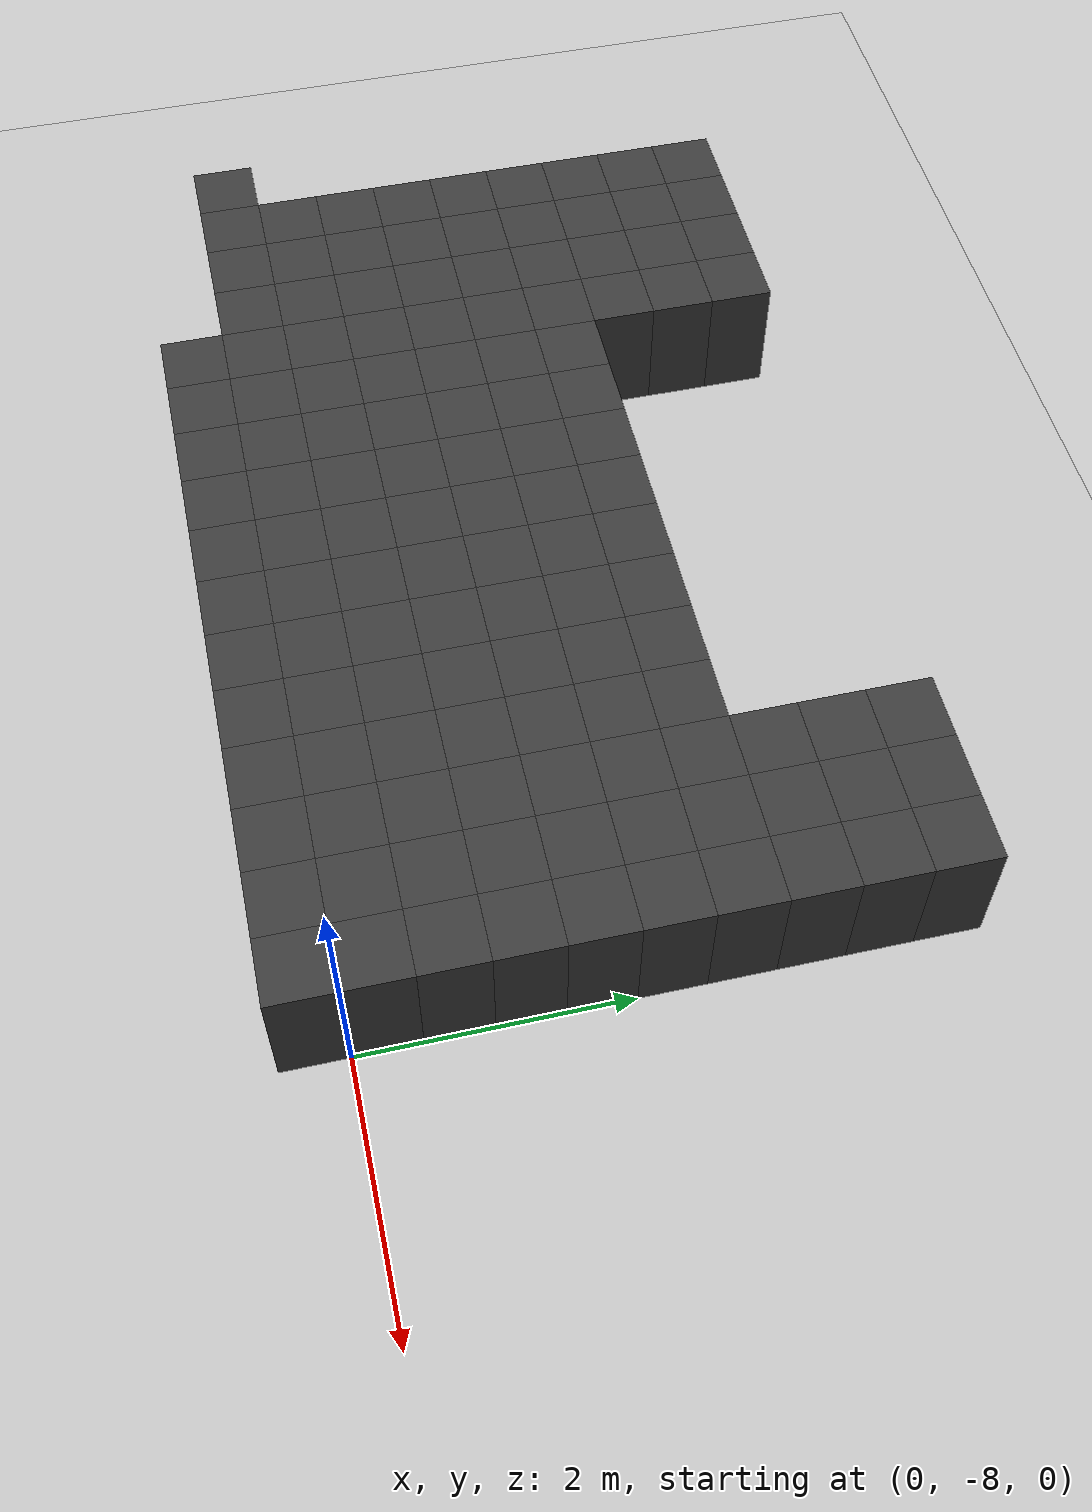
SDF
<sdf version="1.7">
 <world name="map_13820">
  <model name="ground_plane">
   <static>true</static>
   <link name="link">
    <collision name="collision">
     <geometry><plane><normal>0 0 1</normal><size>200 200</size></plane></geometry>
    </collision>
    <visual name="visual">
     <geometry><plane><normal>0 0 1</normal><size>200 200</size></plane></geometry>
     <material><ambient>0.8 0.8 0.8 1</ambient><diffuse>0.8 0.8 0.8 1</diffuse></material>
    </visual>
   </link>
  </model>
  <model name="maze_environment">
   <static>true</static>
   <link name="wall_1115">
    <pose>-7.250 -3.750 0.500 0 0 0</pose>
    <collision name="col"><geometry><box><size>0.5 0.5 1.0</size></box></geometry></collision>
    <visual name="vis">
     <geometry><box><size>0.5 0.5 1.0</size></box></geometry>
     <material><ambient>0.15 0.15 0.15 1</ambient><diffuse>0.25 0.25 0.25 1</diffuse></material>
    </visual>
   </link>
   <link name="wall_1116">
    <pose>-6.750 -3.750 0.500 0 0 0</pose>
    <collision name="col"><geometry><box><size>0.5 0.5 1.0</size></box></geometry></collision>
    <visual name="vis">
     <geometry><box><size>0.5 0.5 1.0</size></box></geometry>
     <material><ambient>0.15 0.15 0.15 1</ambient><diffuse>0.25 0.25 0.25 1</diffuse></material>
    </visual>
   </link>
   <link name="wall_1117">
    <pose>-6.250 -3.750 0.500 0 0 0</pose>
    <collision name="col"><geometry><box><size>0.5 0.5 1.0</size></box></geometry></collision>
    <visual name="vis">
     <geometry><box><size>0.5 0.5 1.0</size></box></geometry>
     <material><ambient>0.15 0.15 0.15 1</ambient><diffuse>0.25 0.25 0.25 1</diffuse></material>
    </visual>
   </link>
   <link name="wall_1118">
    <pose>-5.750 -3.750 0.500 0 0 0</pose>
    <collision name="col"><geometry><box><size>0.5 0.5 1.0</size></box></geometry></collision>
    <visual name="vis">
     <geometry><box><size>0.5 0.5 1.0</size></box></geometry>
     <material><ambient>0.15 0.15 0.15 1</ambient><diffuse>0.25 0.25 0.25 1</diffuse></material>
    </visual>
   </link>
   <link name="wall_1119">
    <pose>-1.250 -3.750 0.500 0 0 0</pose>
    <collision name="col"><geometry><box><size>0.5 0.5 1.0</size></box></geometry></collision>
    <visual name="vis">
     <geometry><box><size>0.5 0.5 1.0</size></box></geometry>
     <material><ambient>0.15 0.15 0.15 1</ambient><diffuse>0.25 0.25 0.25 1</diffuse></material>
    </visual>
   </link>
   <link name="wall_1120">
    <pose>-0.750 -3.750 0.500 0 0 0</pose>
    <collision name="col"><geometry><box><size>0.5 0.5 1.0</size></box></geometry></collision>
    <visual name="vis">
     <geometry><box><size>0.5 0.5 1.0</size></box></geometry>
     <material><ambient>0.15 0.15 0.15 1</ambient><diffuse>0.25 0.25 0.25 1</diffuse></material>
    </visual>
   </link>
   <link name="wall_1121">
    <pose>-0.250 -3.750 0.500 0 0 0</pose>
    <collision name="col"><geometry><box><size>0.5 0.5 1.0</size></box></geometry></collision>
    <visual name="vis">
     <geometry><box><size>0.5 0.5 1.0</size></box></geometry>
     <material><ambient>0.15 0.15 0.15 1</ambient><diffuse>0.25 0.25 0.25 1</diffuse></material>
    </visual>
   </link>
   <link name="wall_1142">
    <pose>-7.250 -4.250 0.500 0 0 0</pose>
    <collision name="col"><geometry><box><size>0.5 0.5 1.0</size></box></geometry></collision>
    <visual name="vis">
     <geometry><box><size>0.5 0.5 1.0</size></box></geometry>
     <material><ambient>0.15 0.15 0.15 1</ambient><diffuse>0.25 0.25 0.25 1</diffuse></material>
    </visual>
   </link>
   <link name="wall_1143">
    <pose>-6.750 -4.250 0.500 0 0 0</pose>
    <collision name="col"><geometry><box><size>0.5 0.5 1.0</size></box></geometry></collision>
    <visual name="vis">
     <geometry><box><size>0.5 0.5 1.0</size></box></geometry>
     <material><ambient>0.15 0.15 0.15 1</ambient><diffuse>0.25 0.25 0.25 1</diffuse></material>
    </visual>
   </link>
   <link name="wall_1144">
    <pose>-6.250 -4.250 0.500 0 0 0</pose>
    <collision name="col"><geometry><box><size>0.5 0.5 1.0</size></box></geometry></collision>
    <visual name="vis">
     <geometry><box><size>0.5 0.5 1.0</size></box></geometry>
     <material><ambient>0.15 0.15 0.15 1</ambient><diffuse>0.25 0.25 0.25 1</diffuse></material>
    </visual>
   </link>
   <link name="wall_1145">
    <pose>-5.750 -4.250 0.500 0 0 0</pose>
    <collision name="col"><geometry><box><size>0.5 0.5 1.0</size></box></geometry></collision>
    <visual name="vis">
     <geometry><box><size>0.5 0.5 1.0</size></box></geometry>
     <material><ambient>0.15 0.15 0.15 1</ambient><diffuse>0.25 0.25 0.25 1</diffuse></material>
    </visual>
   </link>
   <link name="wall_1146">
    <pose>-1.250 -4.250 0.500 0 0 0</pose>
    <collision name="col"><geometry><box><size>0.5 0.5 1.0</size></box></geometry></collision>
    <visual name="vis">
     <geometry><box><size>0.5 0.5 1.0</size></box></geometry>
     <material><ambient>0.15 0.15 0.15 1</ambient><diffuse>0.25 0.25 0.25 1</diffuse></material>
    </visual>
   </link>
   <link name="wall_1147">
    <pose>-0.750 -4.250 0.500 0 0 0</pose>
    <collision name="col"><geometry><box><size>0.5 0.5 1.0</size></box></geometry></collision>
    <visual name="vis">
     <geometry><box><size>0.5 0.5 1.0</size></box></geometry>
     <material><ambient>0.15 0.15 0.15 1</ambient><diffuse>0.25 0.25 0.25 1</diffuse></material>
    </visual>
   </link>
   <link name="wall_1148">
    <pose>-0.250 -4.250 0.500 0 0 0</pose>
    <collision name="col"><geometry><box><size>0.5 0.5 1.0</size></box></geometry></collision>
    <visual name="vis">
     <geometry><box><size>0.5 0.5 1.0</size></box></geometry>
     <material><ambient>0.15 0.15 0.15 1</ambient><diffuse>0.25 0.25 0.25 1</diffuse></material>
    </visual>
   </link>
   <link name="wall_1169">
    <pose>-7.250 -4.750 0.500 0 0 0</pose>
    <collision name="col"><geometry><box><size>0.5 0.5 1.0</size></box></geometry></collision>
    <visual name="vis">
     <geometry><box><size>0.5 0.5 1.0</size></box></geometry>
     <material><ambient>0.15 0.15 0.15 1</ambient><diffuse>0.25 0.25 0.25 1</diffuse></material>
    </visual>
   </link>
   <link name="wall_1170">
    <pose>-6.750 -4.750 0.500 0 0 0</pose>
    <collision name="col"><geometry><box><size>0.5 0.5 1.0</size></box></geometry></collision>
    <visual name="vis">
     <geometry><box><size>0.5 0.5 1.0</size></box></geometry>
     <material><ambient>0.15 0.15 0.15 1</ambient><diffuse>0.25 0.25 0.25 1</diffuse></material>
    </visual>
   </link>
   <link name="wall_1171">
    <pose>-6.250 -4.750 0.500 0 0 0</pose>
    <collision name="col"><geometry><box><size>0.5 0.5 1.0</size></box></geometry></collision>
    <visual name="vis">
     <geometry><box><size>0.5 0.5 1.0</size></box></geometry>
     <material><ambient>0.15 0.15 0.15 1</ambient><diffuse>0.25 0.25 0.25 1</diffuse></material>
    </visual>
   </link>
   <link name="wall_1172">
    <pose>-5.750 -4.750 0.500 0 0 0</pose>
    <collision name="col"><geometry><box><size>0.5 0.5 1.0</size></box></geometry></collision>
    <visual name="vis">
     <geometry><box><size>0.5 0.5 1.0</size></box></geometry>
     <material><ambient>0.15 0.15 0.15 1</ambient><diffuse>0.25 0.25 0.25 1</diffuse></material>
    </visual>
   </link>
   <link name="wall_1173">
    <pose>-1.250 -4.750 0.500 0 0 0</pose>
    <collision name="col"><geometry><box><size>0.5 0.5 1.0</size></box></geometry></collision>
    <visual name="vis">
     <geometry><box><size>0.5 0.5 1.0</size></box></geometry>
     <material><ambient>0.15 0.15 0.15 1</ambient><diffuse>0.25 0.25 0.25 1</diffuse></material>
    </visual>
   </link>
   <link name="wall_1174">
    <pose>-0.750 -4.750 0.500 0 0 0</pose>
    <collision name="col"><geometry><box><size>0.5 0.5 1.0</size></box></geometry></collision>
    <visual name="vis">
     <geometry><box><size>0.5 0.5 1.0</size></box></geometry>
     <material><ambient>0.15 0.15 0.15 1</ambient><diffuse>0.25 0.25 0.25 1</diffuse></material>
    </visual>
   </link>
   <link name="wall_1175">
    <pose>-0.250 -4.750 0.500 0 0 0</pose>
    <collision name="col"><geometry><box><size>0.5 0.5 1.0</size></box></geometry></collision>
    <visual name="vis">
     <geometry><box><size>0.5 0.5 1.0</size></box></geometry>
     <material><ambient>0.15 0.15 0.15 1</ambient><diffuse>0.25 0.25 0.25 1</diffuse></material>
    </visual>
   </link>
   <link name="wall_1196">
    <pose>-7.250 -5.250 0.500 0 0 0</pose>
    <collision name="col"><geometry><box><size>0.5 0.5 1.0</size></box></geometry></collision>
    <visual name="vis">
     <geometry><box><size>0.5 0.5 1.0</size></box></geometry>
     <material><ambient>0.15 0.15 0.15 1</ambient><diffuse>0.25 0.25 0.25 1</diffuse></material>
    </visual>
   </link>
   <link name="wall_1197">
    <pose>-6.750 -5.250 0.500 0 0 0</pose>
    <collision name="col"><geometry><box><size>0.5 0.5 1.0</size></box></geometry></collision>
    <visual name="vis">
     <geometry><box><size>0.5 0.5 1.0</size></box></geometry>
     <material><ambient>0.15 0.15 0.15 1</ambient><diffuse>0.25 0.25 0.25 1</diffuse></material>
    </visual>
   </link>
   <link name="wall_1198">
    <pose>-6.250 -5.250 0.500 0 0 0</pose>
    <collision name="col"><geometry><box><size>0.5 0.5 1.0</size></box></geometry></collision>
    <visual name="vis">
     <geometry><box><size>0.5 0.5 1.0</size></box></geometry>
     <material><ambient>0.15 0.15 0.15 1</ambient><diffuse>0.25 0.25 0.25 1</diffuse></material>
    </visual>
   </link>
   <link name="wall_1199">
    <pose>-5.750 -5.250 0.500 0 0 0</pose>
    <collision name="col"><geometry><box><size>0.5 0.5 1.0</size></box></geometry></collision>
    <visual name="vis">
     <geometry><box><size>0.5 0.5 1.0</size></box></geometry>
     <material><ambient>0.15 0.15 0.15 1</ambient><diffuse>0.25 0.25 0.25 1</diffuse></material>
    </visual>
   </link>
   <link name="wall_1200">
    <pose>-5.250 -5.250 0.500 0 0 0</pose>
    <collision name="col"><geometry><box><size>0.5 0.5 1.0</size></box></geometry></collision>
    <visual name="vis">
     <geometry><box><size>0.5 0.5 1.0</size></box></geometry>
     <material><ambient>0.15 0.15 0.15 1</ambient><diffuse>0.25 0.25 0.25 1</diffuse></material>
    </visual>
   </link>
   <link name="wall_1201">
    <pose>-4.750 -5.250 0.500 0 0 0</pose>
    <collision name="col"><geometry><box><size>0.5 0.5 1.0</size></box></geometry></collision>
    <visual name="vis">
     <geometry><box><size>0.5 0.5 1.0</size></box></geometry>
     <material><ambient>0.15 0.15 0.15 1</ambient><diffuse>0.25 0.25 0.25 1</diffuse></material>
    </visual>
   </link>
   <link name="wall_1202">
    <pose>-4.250 -5.250 0.500 0 0 0</pose>
    <collision name="col"><geometry><box><size>0.5 0.5 1.0</size></box></geometry></collision>
    <visual name="vis">
     <geometry><box><size>0.5 0.5 1.0</size></box></geometry>
     <material><ambient>0.15 0.15 0.15 1</ambient><diffuse>0.25 0.25 0.25 1</diffuse></material>
    </visual>
   </link>
   <link name="wall_1203">
    <pose>-3.750 -5.250 0.500 0 0 0</pose>
    <collision name="col"><geometry><box><size>0.5 0.5 1.0</size></box></geometry></collision>
    <visual name="vis">
     <geometry><box><size>0.5 0.5 1.0</size></box></geometry>
     <material><ambient>0.15 0.15 0.15 1</ambient><diffuse>0.25 0.25 0.25 1</diffuse></material>
    </visual>
   </link>
   <link name="wall_1204">
    <pose>-3.250 -5.250 0.500 0 0 0</pose>
    <collision name="col"><geometry><box><size>0.5 0.5 1.0</size></box></geometry></collision>
    <visual name="vis">
     <geometry><box><size>0.5 0.5 1.0</size></box></geometry>
     <material><ambient>0.15 0.15 0.15 1</ambient><diffuse>0.25 0.25 0.25 1</diffuse></material>
    </visual>
   </link>
   <link name="wall_1205">
    <pose>-2.750 -5.250 0.500 0 0 0</pose>
    <collision name="col"><geometry><box><size>0.5 0.5 1.0</size></box></geometry></collision>
    <visual name="vis">
     <geometry><box><size>0.5 0.5 1.0</size></box></geometry>
     <material><ambient>0.15 0.15 0.15 1</ambient><diffuse>0.25 0.25 0.25 1</diffuse></material>
    </visual>
   </link>
   <link name="wall_1206">
    <pose>-2.250 -5.250 0.500 0 0 0</pose>
    <collision name="col"><geometry><box><size>0.5 0.5 1.0</size></box></geometry></collision>
    <visual name="vis">
     <geometry><box><size>0.5 0.5 1.0</size></box></geometry>
     <material><ambient>0.15 0.15 0.15 1</ambient><diffuse>0.25 0.25 0.25 1</diffuse></material>
    </visual>
   </link>
   <link name="wall_1207">
    <pose>-1.750 -5.250 0.500 0 0 0</pose>
    <collision name="col"><geometry><box><size>0.5 0.5 1.0</size></box></geometry></collision>
    <visual name="vis">
     <geometry><box><size>0.5 0.5 1.0</size></box></geometry>
     <material><ambient>0.15 0.15 0.15 1</ambient><diffuse>0.25 0.25 0.25 1</diffuse></material>
    </visual>
   </link>
   <link name="wall_1208">
    <pose>-1.250 -5.250 0.500 0 0 0</pose>
    <collision name="col"><geometry><box><size>0.5 0.5 1.0</size></box></geometry></collision>
    <visual name="vis">
     <geometry><box><size>0.5 0.5 1.0</size></box></geometry>
     <material><ambient>0.15 0.15 0.15 1</ambient><diffuse>0.25 0.25 0.25 1</diffuse></material>
    </visual>
   </link>
   <link name="wall_1209">
    <pose>-0.750 -5.250 0.500 0 0 0</pose>
    <collision name="col"><geometry><box><size>0.5 0.5 1.0</size></box></geometry></collision>
    <visual name="vis">
     <geometry><box><size>0.5 0.5 1.0</size></box></geometry>
     <material><ambient>0.15 0.15 0.15 1</ambient><diffuse>0.25 0.25 0.25 1</diffuse></material>
    </visual>
   </link>
   <link name="wall_1210">
    <pose>-0.250 -5.250 0.500 0 0 0</pose>
    <collision name="col"><geometry><box><size>0.5 0.5 1.0</size></box></geometry></collision>
    <visual name="vis">
     <geometry><box><size>0.5 0.5 1.0</size></box></geometry>
     <material><ambient>0.15 0.15 0.15 1</ambient><diffuse>0.25 0.25 0.25 1</diffuse></material>
    </visual>
   </link>
   <link name="wall_1231">
    <pose>-7.250 -5.750 0.500 0 0 0</pose>
    <collision name="col"><geometry><box><size>0.5 0.5 1.0</size></box></geometry></collision>
    <visual name="vis">
     <geometry><box><size>0.5 0.5 1.0</size></box></geometry>
     <material><ambient>0.15 0.15 0.15 1</ambient><diffuse>0.25 0.25 0.25 1</diffuse></material>
    </visual>
   </link>
   <link name="wall_1232">
    <pose>-6.750 -5.750 0.500 0 0 0</pose>
    <collision name="col"><geometry><box><size>0.5 0.5 1.0</size></box></geometry></collision>
    <visual name="vis">
     <geometry><box><size>0.5 0.5 1.0</size></box></geometry>
     <material><ambient>0.15 0.15 0.15 1</ambient><diffuse>0.25 0.25 0.25 1</diffuse></material>
    </visual>
   </link>
   <link name="wall_1233">
    <pose>-6.250 -5.750 0.500 0 0 0</pose>
    <collision name="col"><geometry><box><size>0.5 0.5 1.0</size></box></geometry></collision>
    <visual name="vis">
     <geometry><box><size>0.5 0.5 1.0</size></box></geometry>
     <material><ambient>0.15 0.15 0.15 1</ambient><diffuse>0.25 0.25 0.25 1</diffuse></material>
    </visual>
   </link>
   <link name="wall_1234">
    <pose>-5.750 -5.750 0.500 0 0 0</pose>
    <collision name="col"><geometry><box><size>0.5 0.5 1.0</size></box></geometry></collision>
    <visual name="vis">
     <geometry><box><size>0.5 0.5 1.0</size></box></geometry>
     <material><ambient>0.15 0.15 0.15 1</ambient><diffuse>0.25 0.25 0.25 1</diffuse></material>
    </visual>
   </link>
   <link name="wall_1235">
    <pose>-5.250 -5.750 0.500 0 0 0</pose>
    <collision name="col"><geometry><box><size>0.5 0.5 1.0</size></box></geometry></collision>
    <visual name="vis">
     <geometry><box><size>0.5 0.5 1.0</size></box></geometry>
     <material><ambient>0.15 0.15 0.15 1</ambient><diffuse>0.25 0.25 0.25 1</diffuse></material>
    </visual>
   </link>
   <link name="wall_1236">
    <pose>-4.750 -5.750 0.500 0 0 0</pose>
    <collision name="col"><geometry><box><size>0.5 0.5 1.0</size></box></geometry></collision>
    <visual name="vis">
     <geometry><box><size>0.5 0.5 1.0</size></box></geometry>
     <material><ambient>0.15 0.15 0.15 1</ambient><diffuse>0.25 0.25 0.25 1</diffuse></material>
    </visual>
   </link>
   <link name="wall_1237">
    <pose>-4.250 -5.750 0.500 0 0 0</pose>
    <collision name="col"><geometry><box><size>0.5 0.5 1.0</size></box></geometry></collision>
    <visual name="vis">
     <geometry><box><size>0.5 0.5 1.0</size></box></geometry>
     <material><ambient>0.15 0.15 0.15 1</ambient><diffuse>0.25 0.25 0.25 1</diffuse></material>
    </visual>
   </link>
   <link name="wall_1238">
    <pose>-3.750 -5.750 0.500 0 0 0</pose>
    <collision name="col"><geometry><box><size>0.5 0.5 1.0</size></box></geometry></collision>
    <visual name="vis">
     <geometry><box><size>0.5 0.5 1.0</size></box></geometry>
     <material><ambient>0.15 0.15 0.15 1</ambient><diffuse>0.25 0.25 0.25 1</diffuse></material>
    </visual>
   </link>
   <link name="wall_1239">
    <pose>-3.250 -5.750 0.500 0 0 0</pose>
    <collision name="col"><geometry><box><size>0.5 0.5 1.0</size></box></geometry></collision>
    <visual name="vis">
     <geometry><box><size>0.5 0.5 1.0</size></box></geometry>
     <material><ambient>0.15 0.15 0.15 1</ambient><diffuse>0.25 0.25 0.25 1</diffuse></material>
    </visual>
   </link>
   <link name="wall_1240">
    <pose>-2.750 -5.750 0.500 0 0 0</pose>
    <collision name="col"><geometry><box><size>0.5 0.5 1.0</size></box></geometry></collision>
    <visual name="vis">
     <geometry><box><size>0.5 0.5 1.0</size></box></geometry>
     <material><ambient>0.15 0.15 0.15 1</ambient><diffuse>0.25 0.25 0.25 1</diffuse></material>
    </visual>
   </link>
   <link name="wall_1241">
    <pose>-2.250 -5.750 0.500 0 0 0</pose>
    <collision name="col"><geometry><box><size>0.5 0.5 1.0</size></box></geometry></collision>
    <visual name="vis">
     <geometry><box><size>0.5 0.5 1.0</size></box></geometry>
     <material><ambient>0.15 0.15 0.15 1</ambient><diffuse>0.25 0.25 0.25 1</diffuse></material>
    </visual>
   </link>
   <link name="wall_1242">
    <pose>-1.750 -5.750 0.500 0 0 0</pose>
    <collision name="col"><geometry><box><size>0.5 0.5 1.0</size></box></geometry></collision>
    <visual name="vis">
     <geometry><box><size>0.5 0.5 1.0</size></box></geometry>
     <material><ambient>0.15 0.15 0.15 1</ambient><diffuse>0.25 0.25 0.25 1</diffuse></material>
    </visual>
   </link>
   <link name="wall_1243">
    <pose>-1.250 -5.750 0.500 0 0 0</pose>
    <collision name="col"><geometry><box><size>0.5 0.5 1.0</size></box></geometry></collision>
    <visual name="vis">
     <geometry><box><size>0.5 0.5 1.0</size></box></geometry>
     <material><ambient>0.15 0.15 0.15 1</ambient><diffuse>0.25 0.25 0.25 1</diffuse></material>
    </visual>
   </link>
   <link name="wall_1244">
    <pose>-0.750 -5.750 0.500 0 0 0</pose>
    <collision name="col"><geometry><box><size>0.5 0.5 1.0</size></box></geometry></collision>
    <visual name="vis">
     <geometry><box><size>0.5 0.5 1.0</size></box></geometry>
     <material><ambient>0.15 0.15 0.15 1</ambient><diffuse>0.25 0.25 0.25 1</diffuse></material>
    </visual>
   </link>
   <link name="wall_1245">
    <pose>-0.250 -5.750 0.500 0 0 0</pose>
    <collision name="col"><geometry><box><size>0.5 0.5 1.0</size></box></geometry></collision>
    <visual name="vis">
     <geometry><box><size>0.5 0.5 1.0</size></box></geometry>
     <material><ambient>0.15 0.15 0.15 1</ambient><diffuse>0.25 0.25 0.25 1</diffuse></material>
    </visual>
   </link>
   <link name="wall_1266">
    <pose>-7.250 -6.250 0.500 0 0 0</pose>
    <collision name="col"><geometry><box><size>0.5 0.5 1.0</size></box></geometry></collision>
    <visual name="vis">
     <geometry><box><size>0.5 0.5 1.0</size></box></geometry>
     <material><ambient>0.15 0.15 0.15 1</ambient><diffuse>0.25 0.25 0.25 1</diffuse></material>
    </visual>
   </link>
   <link name="wall_1267">
    <pose>-6.750 -6.250 0.500 0 0 0</pose>
    <collision name="col"><geometry><box><size>0.5 0.5 1.0</size></box></geometry></collision>
    <visual name="vis">
     <geometry><box><size>0.5 0.5 1.0</size></box></geometry>
     <material><ambient>0.15 0.15 0.15 1</ambient><diffuse>0.25 0.25 0.25 1</diffuse></material>
    </visual>
   </link>
   <link name="wall_1268">
    <pose>-6.250 -6.250 0.500 0 0 0</pose>
    <collision name="col"><geometry><box><size>0.5 0.5 1.0</size></box></geometry></collision>
    <visual name="vis">
     <geometry><box><size>0.5 0.5 1.0</size></box></geometry>
     <material><ambient>0.15 0.15 0.15 1</ambient><diffuse>0.25 0.25 0.25 1</diffuse></material>
    </visual>
   </link>
   <link name="wall_1269">
    <pose>-5.750 -6.250 0.500 0 0 0</pose>
    <collision name="col"><geometry><box><size>0.5 0.5 1.0</size></box></geometry></collision>
    <visual name="vis">
     <geometry><box><size>0.5 0.5 1.0</size></box></geometry>
     <material><ambient>0.15 0.15 0.15 1</ambient><diffuse>0.25 0.25 0.25 1</diffuse></material>
    </visual>
   </link>
   <link name="wall_1270">
    <pose>-5.250 -6.250 0.500 0 0 0</pose>
    <collision name="col"><geometry><box><size>0.5 0.5 1.0</size></box></geometry></collision>
    <visual name="vis">
     <geometry><box><size>0.5 0.5 1.0</size></box></geometry>
     <material><ambient>0.15 0.15 0.15 1</ambient><diffuse>0.25 0.25 0.25 1</diffuse></material>
    </visual>
   </link>
   <link name="wall_1271">
    <pose>-4.750 -6.250 0.500 0 0 0</pose>
    <collision name="col"><geometry><box><size>0.5 0.5 1.0</size></box></geometry></collision>
    <visual name="vis">
     <geometry><box><size>0.5 0.5 1.0</size></box></geometry>
     <material><ambient>0.15 0.15 0.15 1</ambient><diffuse>0.25 0.25 0.25 1</diffuse></material>
    </visual>
   </link>
   <link name="wall_1272">
    <pose>-4.250 -6.250 0.500 0 0 0</pose>
    <collision name="col"><geometry><box><size>0.5 0.5 1.0</size></box></geometry></collision>
    <visual name="vis">
     <geometry><box><size>0.5 0.5 1.0</size></box></geometry>
     <material><ambient>0.15 0.15 0.15 1</ambient><diffuse>0.25 0.25 0.25 1</diffuse></material>
    </visual>
   </link>
   <link name="wall_1273">
    <pose>-3.750 -6.250 0.500 0 0 0</pose>
    <collision name="col"><geometry><box><size>0.5 0.5 1.0</size></box></geometry></collision>
    <visual name="vis">
     <geometry><box><size>0.5 0.5 1.0</size></box></geometry>
     <material><ambient>0.15 0.15 0.15 1</ambient><diffuse>0.25 0.25 0.25 1</diffuse></material>
    </visual>
   </link>
   <link name="wall_1274">
    <pose>-3.250 -6.250 0.500 0 0 0</pose>
    <collision name="col"><geometry><box><size>0.5 0.5 1.0</size></box></geometry></collision>
    <visual name="vis">
     <geometry><box><size>0.5 0.5 1.0</size></box></geometry>
     <material><ambient>0.15 0.15 0.15 1</ambient><diffuse>0.25 0.25 0.25 1</diffuse></material>
    </visual>
   </link>
   <link name="wall_1275">
    <pose>-2.750 -6.250 0.500 0 0 0</pose>
    <collision name="col"><geometry><box><size>0.5 0.5 1.0</size></box></geometry></collision>
    <visual name="vis">
     <geometry><box><size>0.5 0.5 1.0</size></box></geometry>
     <material><ambient>0.15 0.15 0.15 1</ambient><diffuse>0.25 0.25 0.25 1</diffuse></material>
    </visual>
   </link>
   <link name="wall_1276">
    <pose>-2.250 -6.250 0.500 0 0 0</pose>
    <collision name="col"><geometry><box><size>0.5 0.5 1.0</size></box></geometry></collision>
    <visual name="vis">
     <geometry><box><size>0.5 0.5 1.0</size></box></geometry>
     <material><ambient>0.15 0.15 0.15 1</ambient><diffuse>0.25 0.25 0.25 1</diffuse></material>
    </visual>
   </link>
   <link name="wall_1277">
    <pose>-1.750 -6.250 0.500 0 0 0</pose>
    <collision name="col"><geometry><box><size>0.5 0.5 1.0</size></box></geometry></collision>
    <visual name="vis">
     <geometry><box><size>0.5 0.5 1.0</size></box></geometry>
     <material><ambient>0.15 0.15 0.15 1</ambient><diffuse>0.25 0.25 0.25 1</diffuse></material>
    </visual>
   </link>
   <link name="wall_1278">
    <pose>-1.250 -6.250 0.500 0 0 0</pose>
    <collision name="col"><geometry><box><size>0.5 0.5 1.0</size></box></geometry></collision>
    <visual name="vis">
     <geometry><box><size>0.5 0.5 1.0</size></box></geometry>
     <material><ambient>0.15 0.15 0.15 1</ambient><diffuse>0.25 0.25 0.25 1</diffuse></material>
    </visual>
   </link>
   <link name="wall_1279">
    <pose>-0.750 -6.250 0.500 0 0 0</pose>
    <collision name="col"><geometry><box><size>0.5 0.5 1.0</size></box></geometry></collision>
    <visual name="vis">
     <geometry><box><size>0.5 0.5 1.0</size></box></geometry>
     <material><ambient>0.15 0.15 0.15 1</ambient><diffuse>0.25 0.25 0.25 1</diffuse></material>
    </visual>
   </link>
   <link name="wall_1280">
    <pose>-0.250 -6.250 0.500 0 0 0</pose>
    <collision name="col"><geometry><box><size>0.5 0.5 1.0</size></box></geometry></collision>
    <visual name="vis">
     <geometry><box><size>0.5 0.5 1.0</size></box></geometry>
     <material><ambient>0.15 0.15 0.15 1</ambient><diffuse>0.25 0.25 0.25 1</diffuse></material>
    </visual>
   </link>
   <link name="wall_1301">
    <pose>-7.250 -6.750 0.500 0 0 0</pose>
    <collision name="col"><geometry><box><size>0.5 0.5 1.0</size></box></geometry></collision>
    <visual name="vis">
     <geometry><box><size>0.5 0.5 1.0</size></box></geometry>
     <material><ambient>0.15 0.15 0.15 1</ambient><diffuse>0.25 0.25 0.25 1</diffuse></material>
    </visual>
   </link>
   <link name="wall_1302">
    <pose>-6.750 -6.750 0.500 0 0 0</pose>
    <collision name="col"><geometry><box><size>0.5 0.5 1.0</size></box></geometry></collision>
    <visual name="vis">
     <geometry><box><size>0.5 0.5 1.0</size></box></geometry>
     <material><ambient>0.15 0.15 0.15 1</ambient><diffuse>0.25 0.25 0.25 1</diffuse></material>
    </visual>
   </link>
   <link name="wall_1303">
    <pose>-6.250 -6.750 0.500 0 0 0</pose>
    <collision name="col"><geometry><box><size>0.5 0.5 1.0</size></box></geometry></collision>
    <visual name="vis">
     <geometry><box><size>0.5 0.5 1.0</size></box></geometry>
     <material><ambient>0.15 0.15 0.15 1</ambient><diffuse>0.25 0.25 0.25 1</diffuse></material>
    </visual>
   </link>
   <link name="wall_1304">
    <pose>-5.750 -6.750 0.500 0 0 0</pose>
    <collision name="col"><geometry><box><size>0.5 0.5 1.0</size></box></geometry></collision>
    <visual name="vis">
     <geometry><box><size>0.5 0.5 1.0</size></box></geometry>
     <material><ambient>0.15 0.15 0.15 1</ambient><diffuse>0.25 0.25 0.25 1</diffuse></material>
    </visual>
   </link>
   <link name="wall_1305">
    <pose>-5.250 -6.750 0.500 0 0 0</pose>
    <collision name="col"><geometry><box><size>0.5 0.5 1.0</size></box></geometry></collision>
    <visual name="vis">
     <geometry><box><size>0.5 0.5 1.0</size></box></geometry>
     <material><ambient>0.15 0.15 0.15 1</ambient><diffuse>0.25 0.25 0.25 1</diffuse></material>
    </visual>
   </link>
   <link name="wall_1306">
    <pose>-4.750 -6.750 0.500 0 0 0</pose>
    <collision name="col"><geometry><box><size>0.5 0.5 1.0</size></box></geometry></collision>
    <visual name="vis">
     <geometry><box><size>0.5 0.5 1.0</size></box></geometry>
     <material><ambient>0.15 0.15 0.15 1</ambient><diffuse>0.25 0.25 0.25 1</diffuse></material>
    </visual>
   </link>
   <link name="wall_1307">
    <pose>-4.250 -6.750 0.500 0 0 0</pose>
    <collision name="col"><geometry><box><size>0.5 0.5 1.0</size></box></geometry></collision>
    <visual name="vis">
     <geometry><box><size>0.5 0.5 1.0</size></box></geometry>
     <material><ambient>0.15 0.15 0.15 1</ambient><diffuse>0.25 0.25 0.25 1</diffuse></material>
    </visual>
   </link>
   <link name="wall_1308">
    <pose>-3.750 -6.750 0.500 0 0 0</pose>
    <collision name="col"><geometry><box><size>0.5 0.5 1.0</size></box></geometry></collision>
    <visual name="vis">
     <geometry><box><size>0.5 0.5 1.0</size></box></geometry>
     <material><ambient>0.15 0.15 0.15 1</ambient><diffuse>0.25 0.25 0.25 1</diffuse></material>
    </visual>
   </link>
   <link name="wall_1309">
    <pose>-3.250 -6.750 0.500 0 0 0</pose>
    <collision name="col"><geometry><box><size>0.5 0.5 1.0</size></box></geometry></collision>
    <visual name="vis">
     <geometry><box><size>0.5 0.5 1.0</size></box></geometry>
     <material><ambient>0.15 0.15 0.15 1</ambient><diffuse>0.25 0.25 0.25 1</diffuse></material>
    </visual>
   </link>
   <link name="wall_1310">
    <pose>-2.750 -6.750 0.500 0 0 0</pose>
    <collision name="col"><geometry><box><size>0.5 0.5 1.0</size></box></geometry></collision>
    <visual name="vis">
     <geometry><box><size>0.5 0.5 1.0</size></box></geometry>
     <material><ambient>0.15 0.15 0.15 1</ambient><diffuse>0.25 0.25 0.25 1</diffuse></material>
    </visual>
   </link>
   <link name="wall_1311">
    <pose>-2.250 -6.750 0.500 0 0 0</pose>
    <collision name="col"><geometry><box><size>0.5 0.5 1.0</size></box></geometry></collision>
    <visual name="vis">
     <geometry><box><size>0.5 0.5 1.0</size></box></geometry>
     <material><ambient>0.15 0.15 0.15 1</ambient><diffuse>0.25 0.25 0.25 1</diffuse></material>
    </visual>
   </link>
   <link name="wall_1312">
    <pose>-1.750 -6.750 0.500 0 0 0</pose>
    <collision name="col"><geometry><box><size>0.5 0.5 1.0</size></box></geometry></collision>
    <visual name="vis">
     <geometry><box><size>0.5 0.5 1.0</size></box></geometry>
     <material><ambient>0.15 0.15 0.15 1</ambient><diffuse>0.25 0.25 0.25 1</diffuse></material>
    </visual>
   </link>
   <link name="wall_1313">
    <pose>-1.250 -6.750 0.500 0 0 0</pose>
    <collision name="col"><geometry><box><size>0.5 0.5 1.0</size></box></geometry></collision>
    <visual name="vis">
     <geometry><box><size>0.5 0.5 1.0</size></box></geometry>
     <material><ambient>0.15 0.15 0.15 1</ambient><diffuse>0.25 0.25 0.25 1</diffuse></material>
    </visual>
   </link>
   <link name="wall_1314">
    <pose>-0.750 -6.750 0.500 0 0 0</pose>
    <collision name="col"><geometry><box><size>0.5 0.5 1.0</size></box></geometry></collision>
    <visual name="vis">
     <geometry><box><size>0.5 0.5 1.0</size></box></geometry>
     <material><ambient>0.15 0.15 0.15 1</ambient><diffuse>0.25 0.25 0.25 1</diffuse></material>
    </visual>
   </link>
   <link name="wall_1315">
    <pose>-0.250 -6.750 0.500 0 0 0</pose>
    <collision name="col"><geometry><box><size>0.5 0.5 1.0</size></box></geometry></collision>
    <visual name="vis">
     <geometry><box><size>0.5 0.5 1.0</size></box></geometry>
     <material><ambient>0.15 0.15 0.15 1</ambient><diffuse>0.25 0.25 0.25 1</diffuse></material>
    </visual>
   </link>
   <link name="wall_1343">
    <pose>-7.250 -7.250 0.500 0 0 0</pose>
    <collision name="col"><geometry><box><size>0.5 0.5 1.0</size></box></geometry></collision>
    <visual name="vis">
     <geometry><box><size>0.5 0.5 1.0</size></box></geometry>
     <material><ambient>0.15 0.15 0.15 1</ambient><diffuse>0.25 0.25 0.25 1</diffuse></material>
    </visual>
   </link>
   <link name="wall_1344">
    <pose>-6.750 -7.250 0.500 0 0 0</pose>
    <collision name="col"><geometry><box><size>0.5 0.5 1.0</size></box></geometry></collision>
    <visual name="vis">
     <geometry><box><size>0.5 0.5 1.0</size></box></geometry>
     <material><ambient>0.15 0.15 0.15 1</ambient><diffuse>0.25 0.25 0.25 1</diffuse></material>
    </visual>
   </link>
   <link name="wall_1345">
    <pose>-6.250 -7.250 0.500 0 0 0</pose>
    <collision name="col"><geometry><box><size>0.5 0.5 1.0</size></box></geometry></collision>
    <visual name="vis">
     <geometry><box><size>0.5 0.5 1.0</size></box></geometry>
     <material><ambient>0.15 0.15 0.15 1</ambient><diffuse>0.25 0.25 0.25 1</diffuse></material>
    </visual>
   </link>
   <link name="wall_1346">
    <pose>-5.750 -7.250 0.500 0 0 0</pose>
    <collision name="col"><geometry><box><size>0.5 0.5 1.0</size></box></geometry></collision>
    <visual name="vis">
     <geometry><box><size>0.5 0.5 1.0</size></box></geometry>
     <material><ambient>0.15 0.15 0.15 1</ambient><diffuse>0.25 0.25 0.25 1</diffuse></material>
    </visual>
   </link>
   <link name="wall_1347">
    <pose>-5.250 -7.250 0.500 0 0 0</pose>
    <collision name="col"><geometry><box><size>0.5 0.5 1.0</size></box></geometry></collision>
    <visual name="vis">
     <geometry><box><size>0.5 0.5 1.0</size></box></geometry>
     <material><ambient>0.15 0.15 0.15 1</ambient><diffuse>0.25 0.25 0.25 1</diffuse></material>
    </visual>
   </link>
   <link name="wall_1348">
    <pose>-4.750 -7.250 0.500 0 0 0</pose>
    <collision name="col"><geometry><box><size>0.5 0.5 1.0</size></box></geometry></collision>
    <visual name="vis">
     <geometry><box><size>0.5 0.5 1.0</size></box></geometry>
     <material><ambient>0.15 0.15 0.15 1</ambient><diffuse>0.25 0.25 0.25 1</diffuse></material>
    </visual>
   </link>
   <link name="wall_1349">
    <pose>-4.250 -7.250 0.500 0 0 0</pose>
    <collision name="col"><geometry><box><size>0.5 0.5 1.0</size></box></geometry></collision>
    <visual name="vis">
     <geometry><box><size>0.5 0.5 1.0</size></box></geometry>
     <material><ambient>0.15 0.15 0.15 1</ambient><diffuse>0.25 0.25 0.25 1</diffuse></material>
    </visual>
   </link>
   <link name="wall_1350">
    <pose>-3.750 -7.250 0.500 0 0 0</pose>
    <collision name="col"><geometry><box><size>0.5 0.5 1.0</size></box></geometry></collision>
    <visual name="vis">
     <geometry><box><size>0.5 0.5 1.0</size></box></geometry>
     <material><ambient>0.15 0.15 0.15 1</ambient><diffuse>0.25 0.25 0.25 1</diffuse></material>
    </visual>
   </link>
   <link name="wall_1351">
    <pose>-3.250 -7.250 0.500 0 0 0</pose>
    <collision name="col"><geometry><box><size>0.5 0.5 1.0</size></box></geometry></collision>
    <visual name="vis">
     <geometry><box><size>0.5 0.5 1.0</size></box></geometry>
     <material><ambient>0.15 0.15 0.15 1</ambient><diffuse>0.25 0.25 0.25 1</diffuse></material>
    </visual>
   </link>
   <link name="wall_1352">
    <pose>-2.750 -7.250 0.500 0 0 0</pose>
    <collision name="col"><geometry><box><size>0.5 0.5 1.0</size></box></geometry></collision>
    <visual name="vis">
     <geometry><box><size>0.5 0.5 1.0</size></box></geometry>
     <material><ambient>0.15 0.15 0.15 1</ambient><diffuse>0.25 0.25 0.25 1</diffuse></material>
    </visual>
   </link>
   <link name="wall_1353">
    <pose>-2.250 -7.250 0.500 0 0 0</pose>
    <collision name="col"><geometry><box><size>0.5 0.5 1.0</size></box></geometry></collision>
    <visual name="vis">
     <geometry><box><size>0.5 0.5 1.0</size></box></geometry>
     <material><ambient>0.15 0.15 0.15 1</ambient><diffuse>0.25 0.25 0.25 1</diffuse></material>
    </visual>
   </link>
   <link name="wall_1354">
    <pose>-1.750 -7.250 0.500 0 0 0</pose>
    <collision name="col"><geometry><box><size>0.5 0.5 1.0</size></box></geometry></collision>
    <visual name="vis">
     <geometry><box><size>0.5 0.5 1.0</size></box></geometry>
     <material><ambient>0.15 0.15 0.15 1</ambient><diffuse>0.25 0.25 0.25 1</diffuse></material>
    </visual>
   </link>
   <link name="wall_1355">
    <pose>-1.250 -7.250 0.500 0 0 0</pose>
    <collision name="col"><geometry><box><size>0.5 0.5 1.0</size></box></geometry></collision>
    <visual name="vis">
     <geometry><box><size>0.5 0.5 1.0</size></box></geometry>
     <material><ambient>0.15 0.15 0.15 1</ambient><diffuse>0.25 0.25 0.25 1</diffuse></material>
    </visual>
   </link>
   <link name="wall_1356">
    <pose>-0.750 -7.250 0.500 0 0 0</pose>
    <collision name="col"><geometry><box><size>0.5 0.5 1.0</size></box></geometry></collision>
    <visual name="vis">
     <geometry><box><size>0.5 0.5 1.0</size></box></geometry>
     <material><ambient>0.15 0.15 0.15 1</ambient><diffuse>0.25 0.25 0.25 1</diffuse></material>
    </visual>
   </link>
   <link name="wall_1357">
    <pose>-0.250 -7.250 0.500 0 0 0</pose>
    <collision name="col"><geometry><box><size>0.5 0.5 1.0</size></box></geometry></collision>
    <visual name="vis">
     <geometry><box><size>0.5 0.5 1.0</size></box></geometry>
     <material><ambient>0.15 0.15 0.15 1</ambient><diffuse>0.25 0.25 0.25 1</diffuse></material>
    </visual>
   </link>
   <link name="wall_1391">
    <pose>-7.750 -7.750 0.500 0 0 0</pose>
    <collision name="col"><geometry><box><size>0.5 0.5 1.0</size></box></geometry></collision>
    <visual name="vis">
     <geometry><box><size>0.5 0.5 1.0</size></box></geometry>
     <material><ambient>0.15 0.15 0.15 1</ambient><diffuse>0.25 0.25 0.25 1</diffuse></material>
    </visual>
   </link>
   <link name="wall_1392">
    <pose>-7.250 -7.750 0.500 0 0 0</pose>
    <collision name="col"><geometry><box><size>0.5 0.5 1.0</size></box></geometry></collision>
    <visual name="vis">
     <geometry><box><size>0.5 0.5 1.0</size></box></geometry>
     <material><ambient>0.15 0.15 0.15 1</ambient><diffuse>0.25 0.25 0.25 1</diffuse></material>
    </visual>
   </link>
   <link name="wall_1393">
    <pose>-6.750 -7.750 0.500 0 0 0</pose>
    <collision name="col"><geometry><box><size>0.5 0.5 1.0</size></box></geometry></collision>
    <visual name="vis">
     <geometry><box><size>0.5 0.5 1.0</size></box></geometry>
     <material><ambient>0.15 0.15 0.15 1</ambient><diffuse>0.25 0.25 0.25 1</diffuse></material>
    </visual>
   </link>
   <link name="wall_1394">
    <pose>-6.250 -7.750 0.500 0 0 0</pose>
    <collision name="col"><geometry><box><size>0.5 0.5 1.0</size></box></geometry></collision>
    <visual name="vis">
     <geometry><box><size>0.5 0.5 1.0</size></box></geometry>
     <material><ambient>0.15 0.15 0.15 1</ambient><diffuse>0.25 0.25 0.25 1</diffuse></material>
    </visual>
   </link>
   <link name="wall_1395">
    <pose>-5.750 -7.750 0.500 0 0 0</pose>
    <collision name="col"><geometry><box><size>0.5 0.5 1.0</size></box></geometry></collision>
    <visual name="vis">
     <geometry><box><size>0.5 0.5 1.0</size></box></geometry>
     <material><ambient>0.15 0.15 0.15 1</ambient><diffuse>0.25 0.25 0.25 1</diffuse></material>
    </visual>
   </link>
   <link name="wall_1396">
    <pose>-5.250 -7.750 0.500 0 0 0</pose>
    <collision name="col"><geometry><box><size>0.5 0.5 1.0</size></box></geometry></collision>
    <visual name="vis">
     <geometry><box><size>0.5 0.5 1.0</size></box></geometry>
     <material><ambient>0.15 0.15 0.15 1</ambient><diffuse>0.25 0.25 0.25 1</diffuse></material>
    </visual>
   </link>
   <link name="wall_1397">
    <pose>-4.750 -7.750 0.500 0 0 0</pose>
    <collision name="col"><geometry><box><size>0.5 0.5 1.0</size></box></geometry></collision>
    <visual name="vis">
     <geometry><box><size>0.5 0.5 1.0</size></box></geometry>
     <material><ambient>0.15 0.15 0.15 1</ambient><diffuse>0.25 0.25 0.25 1</diffuse></material>
    </visual>
   </link>
   <link name="wall_1398">
    <pose>-4.250 -7.750 0.500 0 0 0</pose>
    <collision name="col"><geometry><box><size>0.5 0.5 1.0</size></box></geometry></collision>
    <visual name="vis">
     <geometry><box><size>0.5 0.5 1.0</size></box></geometry>
     <material><ambient>0.15 0.15 0.15 1</ambient><diffuse>0.25 0.25 0.25 1</diffuse></material>
    </visual>
   </link>
   <link name="wall_1399">
    <pose>-3.750 -7.750 0.500 0 0 0</pose>
    <collision name="col"><geometry><box><size>0.5 0.5 1.0</size></box></geometry></collision>
    <visual name="vis">
     <geometry><box><size>0.5 0.5 1.0</size></box></geometry>
     <material><ambient>0.15 0.15 0.15 1</ambient><diffuse>0.25 0.25 0.25 1</diffuse></material>
    </visual>
   </link>
   <link name="wall_1400">
    <pose>-3.250 -7.750 0.500 0 0 0</pose>
    <collision name="col"><geometry><box><size>0.5 0.5 1.0</size></box></geometry></collision>
    <visual name="vis">
     <geometry><box><size>0.5 0.5 1.0</size></box></geometry>
     <material><ambient>0.15 0.15 0.15 1</ambient><diffuse>0.25 0.25 0.25 1</diffuse></material>
    </visual>
   </link>
   <link name="wall_1401">
    <pose>-2.750 -7.750 0.500 0 0 0</pose>
    <collision name="col"><geometry><box><size>0.5 0.5 1.0</size></box></geometry></collision>
    <visual name="vis">
     <geometry><box><size>0.5 0.5 1.0</size></box></geometry>
     <material><ambient>0.15 0.15 0.15 1</ambient><diffuse>0.25 0.25 0.25 1</diffuse></material>
    </visual>
   </link>
   <link name="wall_1402">
    <pose>-2.250 -7.750 0.500 0 0 0</pose>
    <collision name="col"><geometry><box><size>0.5 0.5 1.0</size></box></geometry></collision>
    <visual name="vis">
     <geometry><box><size>0.5 0.5 1.0</size></box></geometry>
     <material><ambient>0.15 0.15 0.15 1</ambient><diffuse>0.25 0.25 0.25 1</diffuse></material>
    </visual>
   </link>
   <link name="wall_1403">
    <pose>-1.750 -7.750 0.500 0 0 0</pose>
    <collision name="col"><geometry><box><size>0.5 0.5 1.0</size></box></geometry></collision>
    <visual name="vis">
     <geometry><box><size>0.5 0.5 1.0</size></box></geometry>
     <material><ambient>0.15 0.15 0.15 1</ambient><diffuse>0.25 0.25 0.25 1</diffuse></material>
    </visual>
   </link>
   <link name="wall_1404">
    <pose>-1.250 -7.750 0.500 0 0 0</pose>
    <collision name="col"><geometry><box><size>0.5 0.5 1.0</size></box></geometry></collision>
    <visual name="vis">
     <geometry><box><size>0.5 0.5 1.0</size></box></geometry>
     <material><ambient>0.15 0.15 0.15 1</ambient><diffuse>0.25 0.25 0.25 1</diffuse></material>
    </visual>
   </link>
   <link name="wall_1405">
    <pose>-0.750 -7.750 0.500 0 0 0</pose>
    <collision name="col"><geometry><box><size>0.5 0.5 1.0</size></box></geometry></collision>
    <visual name="vis">
     <geometry><box><size>0.5 0.5 1.0</size></box></geometry>
     <material><ambient>0.15 0.15 0.15 1</ambient><diffuse>0.25 0.25 0.25 1</diffuse></material>
    </visual>
   </link>
   <link name="wall_1406">
    <pose>-0.250 -7.750 0.500 0 0 0</pose>
    <collision name="col"><geometry><box><size>0.5 0.5 1.0</size></box></geometry></collision>
    <visual name="vis">
     <geometry><box><size>0.5 0.5 1.0</size></box></geometry>
     <material><ambient>0.15 0.15 0.15 1</ambient><diffuse>0.25 0.25 0.25 1</diffuse></material>
    </visual>
   </link>
   <link name="wall_1444">
    <pose>-5.750 -8.250 0.500 0 0 0</pose>
    <collision name="col"><geometry><box><size>0.5 0.5 1.0</size></box></geometry></collision>
    <visual name="vis">
     <geometry><box><size>0.5 0.5 1.0</size></box></geometry>
     <material><ambient>0.15 0.15 0.15 1</ambient><diffuse>0.25 0.25 0.25 1</diffuse></material>
    </visual>
   </link>
   <link name="wall_1445">
    <pose>-5.250 -8.250 0.500 0 0 0</pose>
    <collision name="col"><geometry><box><size>0.5 0.5 1.0</size></box></geometry></collision>
    <visual name="vis">
     <geometry><box><size>0.5 0.5 1.0</size></box></geometry>
     <material><ambient>0.15 0.15 0.15 1</ambient><diffuse>0.25 0.25 0.25 1</diffuse></material>
    </visual>
   </link>
   <link name="wall_1446">
    <pose>-4.750 -8.250 0.500 0 0 0</pose>
    <collision name="col"><geometry><box><size>0.5 0.5 1.0</size></box></geometry></collision>
    <visual name="vis">
     <geometry><box><size>0.5 0.5 1.0</size></box></geometry>
     <material><ambient>0.15 0.15 0.15 1</ambient><diffuse>0.25 0.25 0.25 1</diffuse></material>
    </visual>
   </link>
   <link name="wall_1447">
    <pose>-4.250 -8.250 0.500 0 0 0</pose>
    <collision name="col"><geometry><box><size>0.5 0.5 1.0</size></box></geometry></collision>
    <visual name="vis">
     <geometry><box><size>0.5 0.5 1.0</size></box></geometry>
     <material><ambient>0.15 0.15 0.15 1</ambient><diffuse>0.25 0.25 0.25 1</diffuse></material>
    </visual>
   </link>
   <link name="wall_1448">
    <pose>-3.750 -8.250 0.500 0 0 0</pose>
    <collision name="col"><geometry><box><size>0.5 0.5 1.0</size></box></geometry></collision>
    <visual name="vis">
     <geometry><box><size>0.5 0.5 1.0</size></box></geometry>
     <material><ambient>0.15 0.15 0.15 1</ambient><diffuse>0.25 0.25 0.25 1</diffuse></material>
    </visual>
   </link>
   <link name="wall_1449">
    <pose>-3.250 -8.250 0.500 0 0 0</pose>
    <collision name="col"><geometry><box><size>0.5 0.5 1.0</size></box></geometry></collision>
    <visual name="vis">
     <geometry><box><size>0.5 0.5 1.0</size></box></geometry>
     <material><ambient>0.15 0.15 0.15 1</ambient><diffuse>0.25 0.25 0.25 1</diffuse></material>
    </visual>
   </link>
   <link name="wall_1450">
    <pose>-2.750 -8.250 0.500 0 0 0</pose>
    <collision name="col"><geometry><box><size>0.5 0.5 1.0</size></box></geometry></collision>
    <visual name="vis">
     <geometry><box><size>0.5 0.5 1.0</size></box></geometry>
     <material><ambient>0.15 0.15 0.15 1</ambient><diffuse>0.25 0.25 0.25 1</diffuse></material>
    </visual>
   </link>
   <link name="wall_1451">
    <pose>-2.250 -8.250 0.500 0 0 0</pose>
    <collision name="col"><geometry><box><size>0.5 0.5 1.0</size></box></geometry></collision>
    <visual name="vis">
     <geometry><box><size>0.5 0.5 1.0</size></box></geometry>
     <material><ambient>0.15 0.15 0.15 1</ambient><diffuse>0.25 0.25 0.25 1</diffuse></material>
    </visual>
   </link>
   <link name="wall_1452">
    <pose>-1.750 -8.250 0.500 0 0 0</pose>
    <collision name="col"><geometry><box><size>0.5 0.5 1.0</size></box></geometry></collision>
    <visual name="vis">
     <geometry><box><size>0.5 0.5 1.0</size></box></geometry>
     <material><ambient>0.15 0.15 0.15 1</ambient><diffuse>0.25 0.25 0.25 1</diffuse></material>
    </visual>
   </link>
   <link name="wall_1453">
    <pose>-1.250 -8.250 0.500 0 0 0</pose>
    <collision name="col"><geometry><box><size>0.5 0.5 1.0</size></box></geometry></collision>
    <visual name="vis">
     <geometry><box><size>0.5 0.5 1.0</size></box></geometry>
     <material><ambient>0.15 0.15 0.15 1</ambient><diffuse>0.25 0.25 0.25 1</diffuse></material>
    </visual>
   </link>
   <link name="wall_1454">
    <pose>-0.750 -8.250 0.500 0 0 0</pose>
    <collision name="col"><geometry><box><size>0.5 0.5 1.0</size></box></geometry></collision>
    <visual name="vis">
     <geometry><box><size>0.5 0.5 1.0</size></box></geometry>
     <material><ambient>0.15 0.15 0.15 1</ambient><diffuse>0.25 0.25 0.25 1</diffuse></material>
    </visual>
   </link>
   <link name="wall_1455">
    <pose>-0.250 -8.250 0.500 0 0 0</pose>
    <collision name="col"><geometry><box><size>0.5 0.5 1.0</size></box></geometry></collision>
    <visual name="vis">
     <geometry><box><size>0.5 0.5 1.0</size></box></geometry>
     <material><ambient>0.15 0.15 0.15 1</ambient><diffuse>0.25 0.25 0.25 1</diffuse></material>
    </visual>
   </link>
  </model>
 </world>
</sdf>
